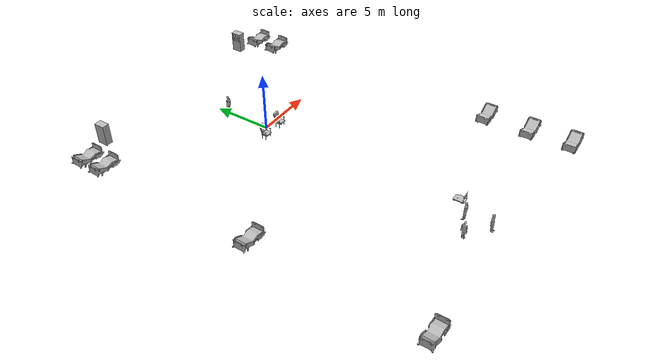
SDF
<sdf version="1.6">
 <world name="world">
  <gravity>0 0 -9.8</gravity>
  <physics default="0" name="default_physics" type="ode">
   <max_step_size>0.001</max_step_size>
   <real_time_factor>1</real_time_factor>
   <real_time_update_rate>1000</real_time_update_rate>
  </physics>
  <model name="CGMClassic_1">
   <include><uri>model://CGMClassic</uri></include>
   <pose>11.1777 -18.4129 0 0 0 -1.5656</pose>
  </model>
  <model name="CGMClassic_2">
   <include><uri>model://CGMClassic</uri></include>
   <pose>11.1179 -14.6493 0 0 0 -1.5656</pose>
  </model>
  <model name="VisitorChair_1">
   <include><uri>model://VisitorChair</uri></include>
   <pose>-1.0052 -0.786961 0 0 -0 0</pose>
  </model>
  <model name="VisitorChair_2">
   <include><uri>model://VisitorChair</uri></include>
   <pose>0.899471 -0.744049 0 0 -0 0</pose>
  </model>
  <model name="OpScrubs_2">
   <include><uri>model://OpScrubs</uri></include>
   <pose>0.054597 4.05849 0 0 -0 3.12413</pose>
  </model>
  <model name="CGMClassic_3">
   <include><uri>model://CGMClassic</uri></include>
   <pose>-11.2304 -21.1134 0 0 -0 1.56641</pose>
  </model>
  <model name="CGMClassic_4">
   <include><uri>model://CGMClassic</uri></include>
   <pose>-11.0878 -7.00992 0 0 -0 1.56296</pose>
  </model>
  <model name="CGMClassic_5">
   <include><uri>model://CGMClassic</uri></include>
   <pose>-11.0106 8.9505 -0.008203 0.0004 -0.035019 1.56285</pose>
  </model>
  <model name="CGMClassic_6">
   <include><uri>model://CGMClassic</uri></include>
   <pose>-11.025 7.10335 0 0 -0.035021 1.57427</pose>
  </model>
  <model name="OpScrubs_4">
   <include><uri>model://OpScrubs</uri></include>
   <pose>-0.93616 -18.2252 0 0 0 -3.12479</pose>
  </model>
  <model name="OpScrubs_5">
   <include><uri>model://OpScrubs</uri></include>
   <pose>-2.66275 -18.9847 0 0 -0 1.57704</pose>
  </model>
  <model name="VendingMachine_1">
   <include><uri>model://VendingMachine</uri></include>
   <pose>-8.60588 9.57801 4.9e-05 0.000173 0 1.5708</pose>
  </model>
  <model name="VendingMachine_2">
   <include><uri>model://VendingMachine</uri></include>
   <pose>8.57644 9.83528 -1e-06 0 -1e-06 -1.5744</pose>
  </model>
  <model name="CGMClassic_7">
   <include><uri>model://CGMClassic</uri></include>
   <pose>10.6166 9.06291 -0.008203 0.0004 -0.035019 1.56285</pose>
  </model>
  <model name="CGMClassic_8">
   <include><uri>model://CGMClassic</uri></include>
   <pose>10.6006 6.90956 -0.008203 0.0004 -0.035019 1.56285</pose>
  </model>
  <model name="ParkingTrolleyMin_1">
   <include><uri>model://ParkingTrolleyMin</uri></include>
   <pose>0.715846 -17.1496 -0.000111 0 -0 0</pose>
  </model>
  <model name="OpScrubs_6">
   <include><uri>model://OpScrubs</uri></include>
   <pose>-0.947112 -20.3884 0 0 -0 0</pose>
  </model>
  <model name="CGMClassic_9">
   <include><uri>model://CGMClassic</uri></include>
   <pose>11.3613 -21.8867 0 0 0 -1.5656</pose>
  </model>
  <light name="ceiling_light_0" type="spot">
   <pose>-0.194533 13.8034 2.8 0 -0 0</pose>
   <diffuse>0.494118 0.494118 0.494118 1</diffuse>
   <specular>0.0941176 0.0941176 0.0941176 1</specular>
   <direction>0 0 -1</direction>
   <attenuation>
    <range>20</range>
    <constant>0.8</constant>
    <linear>0.1</linear>
    <quadratic>0.001</quadratic>
   </attenuation>
   <cast_shadows>0</cast_shadows>
   <spot><inner_angle>1.0</inner_angle><outer_angle>2.5</outer_angle><falloff>1</falloff></spot>
  </light>
  <light name="ceiling_light_1" type="spot">
   <pose>6.30005 8.9551 2.8 0 -0 0</pose>
   <diffuse>0.494118 0.494118 0.494118 1</diffuse>
   <specular>0.0941176 0.0941176 0.0941176 1</specular>
   <direction>0 0 -1</direction>
   <attenuation>
    <range>20</range>
    <constant>0.8</constant>
    <linear>0.1</linear>
    <quadratic>0.001</quadratic>
   </attenuation>
   <cast_shadows>0</cast_shadows>
   <spot><inner_angle>1.0</inner_angle><outer_angle>2.5</outer_angle><falloff>1</falloff></spot>
  </light>
  <light name="ceiling_light_2" type="spot">
   <pose>0.212387 2.1354 2.8 0 -0 0</pose>
   <diffuse>0.494118 0.494118 0.494118 1</diffuse>
   <specular>0.0941176 0.0941176 0.0941176 1</specular>
   <direction>0 0 -1</direction>
   <attenuation>
    <range>20</range>
    <constant>0.8</constant>
    <linear>0.1</linear>
    <quadratic>0.001</quadratic>
   </attenuation>
   <cast_shadows>0</cast_shadows>
   <spot><inner_angle>1.0</inner_angle><outer_angle>2.5</outer_angle><falloff>1</falloff></spot>
  </light>
  <light name="ceiling_light_3" type="spot">
   <pose>-5.81057 7.18327 2.8 0 -0 0</pose>
   <diffuse>0.494118 0.494118 0.494118 1</diffuse>
   <specular>0.0941176 0.0941176 0.0941176 1</specular>
   <direction>0 0 -1</direction>
   <attenuation>
    <range>20</range>
    <constant>0.8</constant>
    <linear>0.1</linear>
    <quadratic>0.001</quadratic>
   </attenuation>
   <cast_shadows>0</cast_shadows>
   <spot><inner_angle>1.0</inner_angle><outer_angle>2.5</outer_angle><falloff>1</falloff></spot>
  </light>
  <light name="ceiling_light_4" type="spot">
   <pose>-4.54396 -3.67312 2.8 0 -0 0</pose>
   <diffuse>0.494118 0.494118 0.494118 1</diffuse>
   <specular>0.0941176 0.0941176 0.0941176 1</specular>
   <direction>0 0 -1</direction>
   <attenuation>
    <range>20</range>
    <constant>0.8</constant>
    <linear>0.1</linear>
    <quadratic>0.001</quadratic>
   </attenuation>
   <cast_shadows>0</cast_shadows>
   <spot><inner_angle>1.0</inner_angle><outer_angle>2.5</outer_angle><falloff>1</falloff></spot>
  </light>
  <light name="ceiling_light_5" type="spot">
   <pose>-4.37087 -14.4782 2.8 0 -0 0</pose>
   <diffuse>0.494118 0.494118 0.494118 1</diffuse>
   <specular>0.0941176 0.0941176 0.0941176 1</specular>
   <direction>0 0 -1</direction>
   <attenuation>
    <range>20</range>
    <constant>0.8</constant>
    <linear>0.1</linear>
    <quadratic>0.001</quadratic>
   </attenuation>
   <cast_shadows>0</cast_shadows>
   <spot><inner_angle>1.0</inner_angle><outer_angle>2.5</outer_angle><falloff>1</falloff></spot>
  </light>
  <light name="ceiling_light_6" type="spot">
   <pose>-4.39457 -24.5382 2.8 0 -0 0</pose>
   <diffuse>0.494118 0.494118 0.494118 1</diffuse>
   <specular>0.0941176 0.0941176 0.0941176 1</specular>
   <direction>0 0 -1</direction>
   <attenuation>
    <range>20</range>
    <constant>0.8</constant>
    <linear>0.1</linear>
    <quadratic>0.001</quadratic>
   </attenuation>
   <cast_shadows>0</cast_shadows>
   <spot><inner_angle>1.0</inner_angle><outer_angle>2.5</outer_angle><falloff>1</falloff></spot>
  </light>
  <light name="ceiling_light_7" type="spot">
   <pose>-4.89858 -33.5301 2.8 0 -0 0</pose>
   <diffuse>0.494118 0.494118 0.494118 1</diffuse>
   <specular>0.0941176 0.0941176 0.0941176 1</specular>
   <direction>0 0 -1</direction>
   <attenuation>
    <range>20</range>
    <constant>0.8</constant>
    <linear>0.1</linear>
    <quadratic>0.001</quadratic>
   </attenuation>
   <cast_shadows>0</cast_shadows>
   <spot><inner_angle>1.0</inner_angle><outer_angle>2.5</outer_angle><falloff>1</falloff></spot>
  </light>
  <light name="ceiling_light_8" type="spot">
   <pose>4.63967 -24.4587 2.8 0 -0 0</pose>
   <diffuse>0.494118 0.494118 0.494118 1</diffuse>
   <specular>0.0941176 0.0941176 0.0941176 1</specular>
   <direction>0 0 -1</direction>
   <attenuation>
    <range>20</range>
    <constant>0.8</constant>
    <linear>0.1</linear>
    <quadratic>0.001</quadratic>
   </attenuation>
   <cast_shadows>0</cast_shadows>
   <spot><inner_angle>1.0</inner_angle><outer_angle>2.5</outer_angle><falloff>1</falloff></spot>
  </light>
  <light name="ceiling_light_9" type="spot">
   <pose>4.92633 -14.3923 2.8 0 -0 0</pose>
   <diffuse>0.494118 0.494118 0.494118 1</diffuse>
   <specular>0.0941176 0.0941176 0.0941176 1</specular>
   <direction>0 0 -1</direction>
   <attenuation>
    <range>20</range>
    <constant>0.8</constant>
    <linear>0.1</linear>
    <quadratic>0.001</quadratic>
   </attenuation>
   <cast_shadows>0</cast_shadows>
   <spot><inner_angle>1.0</inner_angle><outer_angle>2.5</outer_angle><falloff>1</falloff></spot>
  </light>
  <light name="ceiling_light_10" type="spot">
   <pose>4.7009 -3.77715 2.8 0 -0 0</pose>
   <diffuse>0.494118 0.494118 0.494118 1</diffuse>
   <specular>0.0941176 0.0941176 0.0941176 1</specular>
   <direction>0 0 -1</direction>
   <attenuation>
    <range>20</range>
    <constant>0.8</constant>
    <linear>0.1</linear>
    <quadratic>0.001</quadratic>
   </attenuation>
   <cast_shadows>0</cast_shadows>
   <spot><inner_angle>1.0</inner_angle><outer_angle>2.5</outer_angle><falloff>1</falloff></spot>
  </light>
  <light name="ceiling_light_11" type="spot">
   <pose>-9.02467 14.516 2.8 0 -0 0</pose>
   <diffuse>0.494118 0.494118 0.494118 1</diffuse>
   <specular>0.0941176 0.0941176 0.0941176 1</specular>
   <direction>0 0 -1</direction>
   <attenuation>
    <range>20</range>
    <constant>0.8</constant>
    <linear>0.1</linear>
    <quadratic>0.001</quadratic>
   </attenuation>
   <cast_shadows>0</cast_shadows>
   <spot><inner_angle>1.0</inner_angle><outer_angle>2.5</outer_angle><falloff>1</falloff></spot>
  </light>
  <light name="ceiling_light_12" type="spot">
   <pose>9.12495 14.4234 2.8 0 -0 0</pose>
   <diffuse>0.494118 0.494118 0.494118 1</diffuse>
   <specular>0.0941176 0.0941176 0.0941176 1</specular>
   <direction>0 0 -1</direction>
   <attenuation>
    <range>20</range>
    <constant>0.8</constant>
    <linear>0.1</linear>
    <quadratic>0.001</quadratic>
   </attenuation>
   <cast_shadows>0</cast_shadows>
   <spot><inner_angle>1.0</inner_angle><outer_angle>2.5</outer_angle><falloff>1</falloff></spot>
  </light>
  <light name="ceiling_light_13" type="spot">
   <pose>9.49822 -5.56304 2.8 0 -0 0</pose>
   <diffuse>0.494118 0.494118 0.494118 1</diffuse>
   <specular>0.0941176 0.0941176 0.0941176 1</specular>
   <direction>0 0 -1</direction>
   <attenuation>
    <range>20</range>
    <constant>0.8</constant>
    <linear>0.1</linear>
    <quadratic>0.001</quadratic>
   </attenuation>
   <cast_shadows>0</cast_shadows>
   <spot><inner_angle>1.0</inner_angle><outer_angle>2.5</outer_angle><falloff>1</falloff></spot>
  </light>
  <light name="ceiling_light_14" type="spot">
   <pose>-9.46806 -4.74662 2.8 0 -0 0</pose>
   <diffuse>0.494118 0.494118 0.494118 1</diffuse>
   <specular>0.0941176 0.0941176 0.0941176 1</specular>
   <direction>0 0 -1</direction>
   <attenuation>
    <range>20</range>
    <constant>0.8</constant>
    <linear>0.1</linear>
    <quadratic>0.001</quadratic>
   </attenuation>
   <cast_shadows>0</cast_shadows>
   <spot><inner_angle>1.0</inner_angle><outer_angle>2.5</outer_angle><falloff>1</falloff></spot>
  </light>
  <light name="ceiling_light_15" type="spot">
   <pose>-9.46885 -19.0778 2.8 0 -0 0</pose>
   <diffuse>0.494118 0.494118 0.494118 1</diffuse>
   <specular>0.0901961 0.0901961 0.0901961 1</specular>
   <direction>0 0 -1</direction>
   <attenuation>
    <range>20</range>
    <constant>0.8</constant>
    <linear>0.1</linear>
    <quadratic>0.001</quadratic>
   </attenuation>
   <cast_shadows>0</cast_shadows>
   <spot><inner_angle>1.0</inner_angle><outer_angle>2.5</outer_angle><falloff>1</falloff></spot>
  </light>
  <light name="ceiling_light_16" type="spot">
   <pose>-9.42207 -28.0708 2.8 0 -0 0</pose>
   <diffuse>0.494118 0.494118 0.494118 1</diffuse>
   <specular>0.0901961 0.0901961 0.0901961 1</specular>
   <direction>0 0 -1</direction>
   <attenuation>
    <range>20</range>
    <constant>0.8</constant>
    <linear>0.1</linear>
    <quadratic>0.001</quadratic>
   </attenuation>
   <cast_shadows>0</cast_shadows>
   <spot><inner_angle>1.0</inner_angle><outer_angle>2.5</outer_angle><falloff>1</falloff></spot>
  </light>
  <light name="ceiling_light_17" type="spot">
   <pose>1.66302 -11.4026 2.8 0 -0 0</pose>
   <diffuse>0.494118 0.494118 0.494118 1</diffuse>
   <specular>0.0901961 0.0901961 0.0901961 1</specular>
   <direction>0 0 -1</direction>
   <attenuation>
    <range>20</range>
    <constant>0.8</constant>
    <linear>0.1</linear>
    <quadratic>0.001</quadratic>
   </attenuation>
   <cast_shadows>0</cast_shadows>
   <spot><inner_angle>1.0</inner_angle><outer_angle>2.5</outer_angle><falloff>1</falloff></spot>
  </light>
  <light name="ceiling_light_18" type="spot">
   <pose>-1.64839 -19.4418 2.8 0 -0 0</pose>
   <diffuse>0.494118 0.494118 0.494118 1</diffuse>
   <specular>0.0901961 0.0901961 0.0901961 1</specular>
   <direction>0 0 -1</direction>
   <attenuation>
    <range>20</range>
    <constant>0.8</constant>
    <linear>0.1</linear>
    <quadratic>0.001</quadratic>
   </attenuation>
   <cast_shadows>0</cast_shadows>
   <spot><inner_angle>1.0</inner_angle><outer_angle>2.5</outer_angle><falloff>1</falloff></spot>
  </light>
  <light name="ceiling_light_19" type="spot">
   <pose>1.85793 -19.3856 2.8 0 -0 0</pose>
   <diffuse>0.494118 0.494118 0.494118 1</diffuse>
   <specular>0.0901961 0.0901961 0.0901961 1</specular>
   <direction>0 0 -1</direction>
   <attenuation>
    <range>20</range>
    <constant>0.8</constant>
    <linear>0.1</linear>
    <quadratic>0.001</quadratic>
   </attenuation>
   <cast_shadows>0</cast_shadows>
   <spot><inner_angle>1.0</inner_angle><outer_angle>2.5</outer_angle><falloff>1</falloff></spot>
  </light>
  <light name="ceiling_light_20" type="spot">
   <pose>-3.74086 -4.44142 2.8 0 -0 0</pose>
   <diffuse>0.494118 0.494118 0.494118 1</diffuse>
   <specular>0.0901961 0.0901961 0.0901961 1</specular>
   <direction>0 0 -1</direction>
   <attenuation>
    <range>20</range>
    <constant>0.8</constant>
    <linear>0.1</linear>
    <quadratic>0.001</quadratic>
   </attenuation>
   <cast_shadows>0</cast_shadows>
   <spot><inner_angle>1.0</inner_angle><outer_angle>2.5</outer_angle><falloff>1</falloff></spot>
  </light>
  <light name="ceiling_light_21" type="spot">
   <pose>-1.7167 -11.3151 2.8 0 -0 0</pose>
   <diffuse>0.494118 0.494118 0.494118 1</diffuse>
   <specular>0.0901961 0.0901961 0.0901961 1</specular>
   <direction>0 0 -1</direction>
   <attenuation>
    <range>20</range>
    <constant>0.8</constant>
    <linear>0.1</linear>
    <quadratic>0.001</quadratic>
   </attenuation>
   <cast_shadows>0</cast_shadows>
   <spot><inner_angle>1.0</inner_angle><outer_angle>2.5</outer_angle><falloff>1</falloff></spot>
  </light>
  <light name="ceiling_light_22" type="spot">
   <pose>-9.60933 -14.3792 2.8 0 -0 0</pose>
   <diffuse>0.494118 0.494118 0.494118 1</diffuse>
   <specular>0.0901961 0.0901961 0.0901961 1</specular>
   <direction>0 0 -1</direction>
   <attenuation>
    <range>20</range>
    <constant>0.8</constant>
    <linear>0.1</linear>
    <quadratic>0.001</quadratic>
   </attenuation>
   <cast_shadows>0</cast_shadows>
   <spot><inner_angle>1.0</inner_angle><outer_angle>2.5</outer_angle><falloff>1</falloff></spot>
  </light>
  <light name="ceiling_light_23" type="spot">
   <pose>-8.89647 0.199867 2.8 0 -0 0</pose>
   <diffuse>0.494118 0.494118 0.494118 1</diffuse>
   <specular>0.0901961 0.0901961 0.0901961 1</specular>
   <direction>0 0 -1</direction>
   <attenuation>
    <range>20</range>
    <constant>0.8</constant>
    <linear>0.1</linear>
    <quadratic>0.001</quadratic>
   </attenuation>
   <cast_shadows>0</cast_shadows>
   <spot><inner_angle>1.0</inner_angle><outer_angle>2.5</outer_angle><falloff>1</falloff></spot>
  </light>
  <light name="ceiling_light_24" type="spot">
   <pose>8.80325 1.99908 2.8 0 -0 0</pose>
   <diffuse>0.494118 0.494118 0.494118 1</diffuse>
   <specular>0.0901961 0.0901961 0.0901961 1</specular>
   <direction>0 0 -1</direction>
   <attenuation>
    <range>20</range>
    <constant>0.8</constant>
    <linear>0.1</linear>
    <quadratic>0.001</quadratic>
   </attenuation>
   <cast_shadows>0</cast_shadows>
   <spot><inner_angle>1.0</inner_angle><outer_angle>2.5</outer_angle><falloff>1</falloff></spot>
  </light>
  <light name="ceiling_light_25" type="spot">
   <pose>10.6153 10.2443 2.8 0 -0 0</pose>
   <diffuse>0.494118 0.494118 0.494118 1</diffuse>
   <specular>0.0941176 0.0941176 0.0941176 1</specular>
   <direction>0 0 -1</direction>
   <attenuation>
    <range>20</range>
    <constant>0.8</constant>
    <linear>0.1</linear>
    <quadratic>0.001</quadratic>
   </attenuation>
   <cast_shadows>0</cast_shadows>
   <spot><inner_angle>1.0</inner_angle><outer_angle>2.5</outer_angle><falloff>1</falloff></spot>
  </light>
  <light name="ceiling_light_26" type="spot">
   <pose>10.7071 5.95677 2.8 0 -0 0</pose>
   <diffuse>0.494118 0.494118 0.494118 1</diffuse>
   <specular>0.0941176 0.0941176 0.0941176 1</specular>
   <direction>0 0 -1</direction>
   <attenuation>
    <range>20</range>
    <constant>0.8</constant>
    <linear>0.1</linear>
    <quadratic>0.001</quadratic>
   </attenuation>
   <cast_shadows>0</cast_shadows>
   <spot><inner_angle>1.0</inner_angle><outer_angle>2.5</outer_angle><falloff>1</falloff></spot>
  </light>
  <light name="ceiling_light_27" type="spot">
   <pose>-10.6266 10.4097 2.8 0 -0 0</pose>
   <diffuse>0.494118 0.494118 0.494118 1</diffuse>
   <specular>0.0941176 0.0941176 0.0941176 1</specular>
   <direction>0 0 -1</direction>
   <attenuation>
    <range>20</range>
    <constant>0.8</constant>
    <linear>0.1</linear>
    <quadratic>0.001</quadratic>
   </attenuation>
   <cast_shadows>0</cast_shadows>
   <spot><inner_angle>1.0</inner_angle><outer_angle>2.5</outer_angle><falloff>1</falloff></spot>
  </light>
  <light name="ceiling_light_28" type="spot">
   <pose>-10.7712 6.05323 2.8 0 -0 0</pose>
   <diffuse>0.494118 0.494118 0.494118 1</diffuse>
   <specular>0.0941176 0.0941176 0.0941176 1</specular>
   <direction>0 0 -1</direction>
   <attenuation>
    <range>20</range>
    <constant>0.8</constant>
    <linear>0.1</linear>
    <quadratic>0.001</quadratic>
   </attenuation>
   <cast_shadows>0</cast_shadows>
   <spot><inner_angle>1.0</inner_angle><outer_angle>2.5</outer_angle><falloff>1</falloff></spot>
  </light>
  <light name="ceiling_light_29" type="spot">
   <pose>-9.64585 -30.5079 2.8 0 -0 0</pose>
   <diffuse>0.494118 0.494118 0.494118 1</diffuse>
   <specular>0.0941176 0.0941176 0.0941176 1</specular>
   <direction>0 0 -1</direction>
   <attenuation>
    <range>20</range>
    <constant>0.8</constant>
    <linear>0.1</linear>
    <quadratic>0.001</quadratic>
   </attenuation>
   <cast_shadows>0</cast_shadows>
   <spot><inner_angle>1.0</inner_angle><outer_angle>2.5</outer_angle><falloff>1</falloff></spot>
  </light>
  <light name="ceiling_light_30" type="spot">
   <pose>-11.9169 -24.6051 2.8 0 -0 0</pose>
   <diffuse>0.494118 0.494118 0.494118 1</diffuse>
   <specular>0.0941176 0.0941176 0.0941176 1</specular>
   <direction>0 0 -1</direction>
   <attenuation>
    <range>20</range>
    <constant>0.8</constant>
    <linear>0.1</linear>
    <quadratic>0.001</quadratic>
   </attenuation>
   <cast_shadows>0</cast_shadows>
   <spot><inner_angle>1.0</inner_angle><outer_angle>2.5</outer_angle><falloff>1</falloff></spot>
  </light>
  <light name="ceiling_light_31" type="spot">
   <pose>-4.29701 11.4852 2.8 0 -0 0</pose>
   <diffuse>0.494118 0.494118 0.494118 1</diffuse>
   <specular>0.0901961 0.0901961 0.0901961 1</specular>
   <direction>0 0 -1</direction>
   <attenuation>
    <range>20</range>
    <constant>0.8</constant>
    <linear>0.1</linear>
    <quadratic>0.001</quadratic>
   </attenuation>
   <cast_shadows>0</cast_shadows>
   <spot><inner_angle>1.0</inner_angle><outer_angle>2.5</outer_angle><falloff>1</falloff></spot>
  </light>
  <light name="ceiling_light_32" type="spot">
   <pose>3.41329 12.0406 2.8 0 -0 0</pose>
   <diffuse>0.494118 0.494118 0.494118 1</diffuse>
   <specular>0.0901961 0.0901961 0.0901961 1</specular>
   <direction>0 0 -1</direction>
   <attenuation>
    <range>20</range>
    <constant>0.8</constant>
    <linear>0.1</linear>
    <quadratic>0.001</quadratic>
   </attenuation>
   <cast_shadows>0</cast_shadows>
   <spot><inner_angle>1.0</inner_angle><outer_angle>2.5</outer_angle><falloff>1</falloff></spot>
  </light>
  <light name="ceiling_light_33" type="spot">
   <pose>-0.181496 7.28878 2.8 0 -0 0</pose>
   <diffuse>0.494118 0.494118 0.494118 1</diffuse>
   <specular>0.0901961 0.0901961 0.0901961 1</specular>
   <direction>0 0 -1</direction>
   <attenuation>
    <range>20</range>
    <constant>0.8</constant>
    <linear>0.1</linear>
    <quadratic>0.001</quadratic>
   </attenuation>
   <cast_shadows>0</cast_shadows>
   <spot><inner_angle>1.0</inner_angle><outer_angle>2.5</outer_angle><falloff>1</falloff></spot>
  </light>
 </world>
</sdf>

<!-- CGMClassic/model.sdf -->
<sdf version="1.6">
  <model name="CGMClassic">
   <static>true</static>
    <link name="body">
      <pose>0 0 0 0 0 0</pose>

      <visual name="visual">
        <geometry>
          <mesh>
            <uri>model://CGMClassic/meshes/CGMClassic.obj</uri>
            <scale>0.01 0.01 0.01</scale>
          </mesh>
        </geometry>
      </visual>

      <collision name="collision">
        <geometry>
          <mesh>
            <uri>model://CGMClassic/meshes/CGMClassic.obj</uri>
            <scale>0.01 0.01 0.01</scale>
          </mesh>
        </geometry>
      </collision>

    </link>
  </model>
</sdf>

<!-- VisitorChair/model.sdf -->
<sdf version="1.6">
  <model name="VisitorChair">
   <static>true</static>
    <link name="body">
      <pose>0 0 0 0 0 0</pose>

      <visual name="visual">
        <geometry>
          <mesh>
            <uri>model://VisitorChair/meshes/VisitorChair.obj</uri>
          </mesh>
        </geometry>
      </visual>

      <collision name="collision">
        <geometry>
          <mesh>
            <uri>model://VisitorChair/meshes/VisitorChair_Col.obj</uri>
          </mesh>
        </geometry>
      </collision>

    </link>
  </model>
</sdf>

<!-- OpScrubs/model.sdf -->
<sdf version="1.6">
  <model name="OpScrubs">
   <static>true</static>
    <link name="body">
      <pose>0 0 0 0 0 0</pose>

      <visual name="visual">
        <geometry>
          <mesh>
            <uri>model://OpScrubs/meshes/OpScrubs.obj</uri>
          </mesh>
        </geometry>
      </visual>

      <collision name="collision">
        <geometry>
          <mesh>
            <uri>model://OpScrubs/meshes/OpScrubs_Col.obj</uri>
          </mesh>
        </geometry>
      </collision>

    </link>
  </model>
</sdf>

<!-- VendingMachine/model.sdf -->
<sdf version="1.6">
  <model name="VendingMachine">
    <link name="body">
      <pose>0 0 0 0 0 0</pose>

      <visual name="visual">
        <geometry>
          <mesh>
            <uri>model://VendingMachine/meshes/vend.obj</uri>
          </mesh>
        </geometry>
      </visual>

      <collision name="collision">
        <geometry>
          <mesh>
            <uri>model://VendingMachine/meshes/vend.obj</uri>
          </mesh>
        </geometry>
      </collision>

    </link>
  </model>
</sdf>

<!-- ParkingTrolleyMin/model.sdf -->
<sdf version="1.6">
  <model name="ParkingTrolleyMin">
    <link name="body">
      <pose>0 0 0 0 0 0</pose>

        <visual name="visual">
          <pose>0 0 0 0 0 0</pose>
          <geometry>
            <mesh><uri>model://ParkingTrolleyMin/meshes/trolleymin.obj</uri></mesh>
          </geometry>
        </visual>

        <collision name="collision">
          <pose>0 0 0 0 0 0</pose>
          <geometry>
            <mesh><uri>model://ParkingTrolleyMin/meshes/trolleymin.obj</uri></mesh>
          </geometry>
        </collision>

    </link>
  </model>
</sdf>
